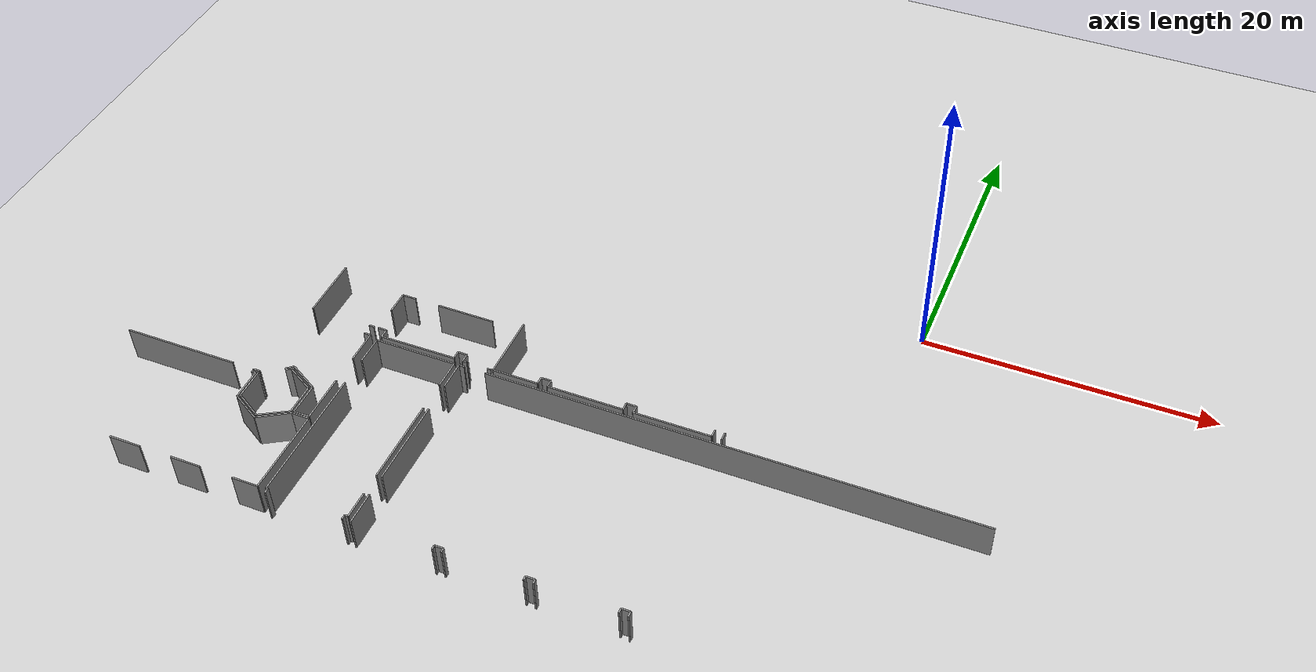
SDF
<sdf version="1.6">
 <world name="default">
  <model name="ground_plane">
   <static>1</static>
   <link name="link">
    <collision name="collision">
     <geometry><plane><normal>0 0 1</normal><size>100 100</size></plane></geometry>
     <surface><friction><ode><mu>100</mu><mu2>50</mu2></ode></friction></surface>
    </collision>
    <visual name="visual">
     <cast_shadows>0</cast_shadows>
     <geometry><plane><normal>0 0 1</normal><size>100 100</size></plane></geometry>
     <material>
      <script><uri>file://media/materials/scripts/gazebo.material</uri><name>Gazebo/Grey</name></script>
     </material>
    </visual>
   </link>
  </model>
  <model name="50010536_PLAN3">
   <static>1</static>
   <link name="Wall_259">
    <collision name="Wall_259_Collision">
     <geometry><box><size>4.30993873599 0.1 2.5</size></box></geometry>
     <pose>2.154969368 0 1.25 0 0 0</pose>
    </collision>
    <visual name="Wall_259_Visual">
     <pose>2.154969368 0 1.25 0 0 0</pose>
     <geometry><box><size>4.30993873599 0.1 2.5</size></box></geometry>
     <material>
      <script><uri>file://media/materials/scripts/gazebo.material</uri><name>Gazebo/Grey</name></script>
      <ambient>1 1 1 1</ambient>
     </material>
    </visual>
    <pose>64.3123512046 -44.3683966606 0 0 0 1.57079632679</pose>
   </link>
   <link name="Wall_283">
    <collision name="Wall_283_Collision">
     <geometry><box><size>0.357045360759 0.1 2.5</size></box></geometry>
     <pose>0.17852268038 0 1.25 0 0 0</pose>
    </collision>
    <visual name="Wall_283_Visual">
     <pose>0.17852268038 0 1.25 0 0 0</pose>
     <geometry><box><size>0.357045360759 0.1 2.5</size></box></geometry>
     <material>
      <script><uri>file://media/materials/scripts/gazebo.material</uri><name>Gazebo/Grey</name></script>
      <ambient>1 1 1 1</ambient>
     </material>
    </visual>
    <pose>68.9468304606 -44.3460495826 0 0 0 3.14159265359</pose>
   </link>
   <link name="Wall_284">
    <collision name="Wall_284_Collision">
     <geometry><box><size>0.0225209879012 0.1 2.5</size></box></geometry>
     <pose>0.0112604939506 0 1.25 0 0 0</pose>
    </collision>
    <visual name="Wall_284_Visual">
     <pose>0.0112604939506 0 1.25 0 0 0</pose>
     <geometry><box><size>0.0225209879012 0.1 2.5</size></box></geometry>
     <material>
      <script><uri>file://media/materials/scripts/gazebo.material</uri><name>Gazebo/Grey</name></script>
      <ambient>1 1 1 1</ambient>
     </material>
    </visual>
    <pose>64.3151445894 -44.3460495826 0 0 0 -1.69515132134</pose>
   </link>
   <link name="Wall_292">
    <collision name="Wall_292_Collision">
     <geometry><box><size>0.326064184363 0.1 2.5</size></box></geometry>
     <pose>0.163032092182 0 1.25 0 0 0</pose>
    </collision>
    <visual name="Wall_292_Visual">
     <pose>0.163032092182 0 1.25 0 0 0</pose>
     <geometry><box><size>0.326064184363 0.1 2.5</size></box></geometry>
     <material>
      <script><uri>file://media/materials/scripts/gazebo.material</uri><name>Gazebo/Grey</name></script>
      <ambient>1 1 1 1</ambient>
     </material>
    </visual>
    <pose>63.6424467511 -50.8482874647 0 0 0 0.0</pose>
   </link>
   <link name="Wall_293">
    <collision name="Wall_293_Collision">
     <geometry><box><size>2.20423451735 0.1 2.5</size></box></geometry>
     <pose>1.10211725867 0 1.25 0 0 0</pose>
    </collision>
    <visual name="Wall_293_Visual">
     <pose>1.10211725867 0 1.25 0 0 0</pose>
     <geometry><box><size>2.20423451735 0.1 2.5</size></box></geometry>
     <material>
      <script><uri>file://media/materials/scripts/gazebo.material</uri><name>Gazebo/Grey</name></script>
      <ambient>1 1 1 1</ambient>
     </material>
    </visual>
    <pose>63.9685109355 -50.8482874647 0 0 0 -1.57079632679</pose>
   </link>
   <link name="Wall_294">
    <collision name="Wall_294_Collision">
     <geometry><box><size>2.32083669156 0.1 2.5</size></box></geometry>
     <pose>1.16041834578 0 1.25 0 0 0</pose>
    </collision>
    <visual name="Wall_294_Visual">
     <pose>1.16041834578 0 1.25 0 0 0</pose>
     <geometry><box><size>2.32083669156 0.1 2.5</size></box></geometry>
     <material>
      <script><uri>file://media/materials/scripts/gazebo.material</uri><name>Gazebo/Grey</name></script>
      <ambient>1 1 1 1</ambient>
     </material>
    </visual>
    <pose>63.9685109355 -53.052521982 0 0 0 -0.522009763757</pose>
   </link>
   <link name="Wall_295">
    <collision name="Wall_295_Collision">
     <geometry><box><size>2.32035682719 0.1 2.5</size></box></geometry>
     <pose>1.1601784136 0 1.25 0 0 0</pose>
    </collision>
    <visual name="Wall_295_Visual">
     <pose>1.1601784136 0 1.25 0 0 0</pose>
     <geometry><box><size>2.32035682719 0.1 2.5</size></box></geometry>
     <material>
      <script><uri>file://media/materials/scripts/gazebo.material</uri><name>Gazebo/Grey</name></script>
      <ambient>1 1 1 1</ambient>
     </material>
    </visual>
    <pose>65.9802558486 -54.2097451036 0 0 0 0.549109710769</pose>
   </link>
   <link name="Wall_296">
    <collision name="Wall_296_Collision">
     <geometry><box><size>1.22172491509 0.1 2.5</size></box></geometry>
     <pose>0.610862457544 0 1.25 0 0 0</pose>
    </collision>
    <visual name="Wall_296_Visual">
     <pose>0.610862457544 0 1.25 0 0 0</pose>
     <geometry><box><size>1.22172491509 0.1 2.5</size></box></geometry>
     <material>
      <script><uri>file://media/materials/scripts/gazebo.material</uri><name>Gazebo/Grey</name></script>
      <ambient>1 1 1 1</ambient>
     </material>
    </visual>
    <pose>67.959495921 -52.9986858394 0 0 0 0.0</pose>
   </link>
   <link name="Wall_297">
    <collision name="Wall_297_Collision">
     <geometry><box><size>5.93111767133 0.1 2.5</size></box></geometry>
     <pose>2.96555883567 0 1.25 0 0 0</pose>
    </collision>
    <visual name="Wall_297_Visual">
     <pose>2.96555883567 0 1.25 0 0 0</pose>
     <geometry><box><size>5.93111767133 0.1 2.5</size></box></geometry>
     <material>
      <script><uri>file://media/materials/scripts/gazebo.material</uri><name>Gazebo/Grey</name></script>
      <ambient>1 1 1 1</ambient>
     </material>
    </visual>
    <pose>69.1812208361 -52.9986858394 0 0 0 -1.57079632679</pose>
   </link>
   <link name="Wall_298">
    <collision name="Wall_298_Collision">
     <geometry><box><size>1.80731993778 0.1 2.5</size></box></geometry>
     <pose>0.903659968892 0 1.25 0 0 0</pose>
    </collision>
    <visual name="Wall_298_Visual">
     <pose>0.903659968892 0 1.25 0 0 0</pose>
     <geometry><box><size>1.80731993778 0.1 2.5</size></box></geometry>
     <material>
      <script><uri>file://media/materials/scripts/gazebo.material</uri><name>Gazebo/Grey</name></script>
      <ambient>1 1 1 1</ambient>
     </material>
    </visual>
    <pose>69.1812208361 -58.9298035108 0 0 0 3.14159265359</pose>
   </link>
   <link name="Wall_299">
    <collision name="Wall_299_Collision">
     <geometry><box><size>2.11890931022 0.1 2.5</size></box></geometry>
     <pose>1.05945465511 0 1.25 0 0 0</pose>
    </collision>
    <visual name="Wall_299_Visual">
     <pose>1.05945465511 0 1.25 0 0 0</pose>
     <geometry><box><size>2.11890931022 0.1 2.5</size></box></geometry>
     <material>
      <script><uri>file://media/materials/scripts/gazebo.material</uri><name>Gazebo/Grey</name></script>
      <ambient>1 1 1 1</ambient>
     </material>
    </visual>
    <pose>65.0721518586 -58.9298035108 0 0 0 3.14159265359</pose>
   </link>
   <link name="Wall_300">
    <collision name="Wall_300_Collision">
     <geometry><box><size>2.19509253087 0.1 2.5</size></box></geometry>
     <pose>1.09754626544 0 1.25 0 0 0</pose>
    </collision>
    <visual name="Wall_300_Visual">
     <pose>1.09754626544 0 1.25 0 0 0</pose>
     <geometry><box><size>2.19509253087 0.1 2.5</size></box></geometry>
     <material>
      <script><uri>file://media/materials/scripts/gazebo.material</uri><name>Gazebo/Grey</name></script>
      <ambient>1 1 1 1</ambient>
     </material>
    </visual>
    <pose>60.7007586579 -58.9298035108 0 0 0 3.14159265359</pose>
   </link>
   <link name="Wall_302">
    <collision name="Wall_302_Collision">
     <geometry><box><size>2.13099431587 0.1 2.5</size></box></geometry>
     <pose>1.06549715794 0 1.25 0 0 0</pose>
    </collision>
    <visual name="Wall_302_Visual">
     <pose>1.06549715794 0 1.25 0 0 0</pose>
     <geometry><box><size>2.13099431587 0.1 2.5</size></box></geometry>
     <material>
      <script><uri>file://media/materials/scripts/gazebo.material</uri><name>Gazebo/Grey</name></script>
      <ambient>1 1 1 1</ambient>
     </material>
    </visual>
    <pose>65.9690823096 -53.9806875536 0 0 0 2.62030331596</pose>
   </link>
   <link name="Wall_303">
    <collision name="Wall_303_Collision">
     <geometry><box><size>2.09988022679 0.1 2.5</size></box></geometry>
     <pose>1.0499401134 0 1.25 0 0 0</pose>
    </collision>
    <visual name="Wall_303_Visual">
     <pose>1.0499401134 0 1.25 0 0 0</pose>
     <geometry><box><size>2.09988022679 0.1 2.5</size></box></geometry>
     <material>
      <script><uri>file://media/materials/scripts/gazebo.material</uri><name>Gazebo/Grey</name></script>
      <ambient>1 1 1 1</ambient>
     </material>
    </visual>
    <pose>64.1211313208 -52.91945529 0 0 0 1.57478711465</pose>
   </link>
   <link name="Wall_304">
    <collision name="Wall_304_Collision">
     <geometry><box><size>0.106845288316 0.1 2.5</size></box></geometry>
     <pose>0.0534226441581 0 1.25 0 0 0</pose>
    </collision>
    <visual name="Wall_304_Visual">
     <pose>0.0534226441581 0 1.25 0 0 0</pose>
     <geometry><box><size>0.106845288316 0.1 2.5</size></box></geometry>
     <material>
      <script><uri>file://media/materials/scripts/gazebo.material</uri><name>Gazebo/Grey</name></script>
      <ambient>1 1 1 1</ambient>
     </material>
    </visual>
    <pose>64.1127511666 -50.8195917849 0 0 0 0.702954768102</pose>
   </link>
   <link name="Wall_305">
    <collision name="Wall_305_Collision">
     <geometry><box><size>0.405480932625 0.1 2.5</size></box></geometry>
     <pose>0.202740466313 0 1.25 0 0 0</pose>
    </collision>
    <visual name="Wall_305_Visual">
     <pose>0.202740466313 0 1.25 0 0 0</pose>
     <geometry><box><size>0.405480932625 0.1 2.5</size></box></geometry>
     <material>
      <script><uri>file://media/materials/scripts/gazebo.material</uri><name>Gazebo/Grey</name></script>
      <ambient>1 1 1 1</ambient>
     </material>
    </visual>
    <pose>65.5912135352 -49.9282481034 0 0 0 0.50034637147</pose>
   </link>
   <link name="Wall_306">
    <collision name="Wall_306_Collision">
     <geometry><box><size>2.13327136933 0.1 2.5</size></box></geometry>
     <pose>1.06663568467 0 1.25 0 0 0</pose>
    </collision>
    <visual name="Wall_306_Visual">
     <pose>1.06663568467 0 1.25 0 0 0</pose>
     <geometry><box><size>2.13327136933 0.1 2.5</size></box></geometry>
     <material>
      <script><uri>file://media/materials/scripts/gazebo.material</uri><name>Gazebo/Grey</name></script>
      <ambient>1 1 1 1</ambient>
     </material>
    </visual>
    <pose>65.9469891756 -49.7337269466 0 0 0 -0.506462585459</pose>
   </link>
   <link name="Wall_307">
    <collision name="Wall_307_Collision">
     <geometry><box><size>2.13393771852 0.1 2.5</size></box></geometry>
     <pose>1.06696885926 0 1.25 0 0 0</pose>
    </collision>
    <visual name="Wall_307_Visual">
     <pose>1.06696885926 0 1.25 0 0 0</pose>
     <geometry><box><size>2.13393771852 0.1 2.5</size></box></geometry>
     <material>
      <script><uri>file://media/materials/scripts/gazebo.material</uri><name>Gazebo/Grey</name></script>
      <ambient>1 1 1 1</ambient>
     </material>
    </visual>
    <pose>67.8124623052 -50.7685490271 0 0 0 -1.56425113881</pose>
   </link>
   <link name="Wall_308">
    <collision name="Wall_308_Collision">
     <geometry><box><size>2.14763896605 0.1 2.5</size></box></geometry>
     <pose>1.07381948302 0 1.25 0 0 0</pose>
    </collision>
    <visual name="Wall_308_Visual">
     <pose>1.07381948302 0 1.25 0 0 0</pose>
     <geometry><box><size>2.14763896605 0.1 2.5</size></box></geometry>
     <material>
      <script><uri>file://media/materials/scripts/gazebo.material</uri><name>Gazebo/Grey</name></script>
      <ambient>1 1 1 1</ambient>
     </material>
    </visual>
    <pose>67.826429229 -52.9024410374 0 0 0 -2.61561199732</pose>
   </link>
   <link name="Wall_312">
    <collision name="Wall_312_Collision">
     <geometry><box><size>0.502047424055 0.1 2.5</size></box></geometry>
     <pose>0.251023712027 0 1.25 0 0 0</pose>
    </collision>
    <visual name="Wall_312_Visual">
     <pose>0.251023712027 0 1.25 0 0 0</pose>
     <geometry><box><size>0.502047424055 0.1 2.5</size></box></geometry>
     <material>
      <script><uri>file://media/materials/scripts/gazebo.material</uri><name>Gazebo/Grey</name></script>
      <ambient>1 1 1 1</ambient>
     </material>
    </visual>
    <pose>68.6197505 -45.1030568517 0 0 0 0.0</pose>
   </link>
   <link name="Wall_313">
    <collision name="Wall_313_Collision">
     <geometry><box><size>2.30733580929 0.1 2.5</size></box></geometry>
     <pose>1.15366790464 0 1.25 0 0 0</pose>
    </collision>
    <visual name="Wall_313_Visual">
     <pose>1.15366790464 0 1.25 0 0 0</pose>
     <geometry><box><size>2.30733580929 0.1 2.5</size></box></geometry>
     <material>
      <script><uri>file://media/materials/scripts/gazebo.material</uri><name>Gazebo/Grey</name></script>
      <ambient>1 1 1 1</ambient>
     </material>
    </visual>
    <pose>69.121797924 -45.1030568517 0 0 0 -1.57079632679</pose>
   </link>
   <link name="Wall_314">
    <collision name="Wall_314_Collision">
     <geometry><box><size>3.34520521855 0.1 2.5</size></box></geometry>
     <pose>1.67260260928 0 1.25 0 0 0</pose>
    </collision>
    <visual name="Wall_314_Visual">
     <pose>1.67260260928 0 1.25 0 0 0</pose>
     <geometry><box><size>3.34520521855 0.1 2.5</size></box></geometry>
     <material>
      <script><uri>file://media/materials/scripts/gazebo.material</uri><name>Gazebo/Grey</name></script>
      <ambient>1 1 1 1</ambient>
     </material>
    </visual>
    <pose>69.121797924 -49.5193981526 0 0 0 -1.57079632679</pose>
   </link>
   <link name="Wall_315">
    <collision name="Wall_315_Collision">
     <geometry><box><size>1.09983176205 0.1 2.5</size></box></geometry>
     <pose>0.549915881027 0 1.25 0 0 0</pose>
    </collision>
    <visual name="Wall_315_Visual">
     <pose>0.549915881027 0 1.25 0 0 0</pose>
     <geometry><box><size>1.09983176205 0.1 2.5</size></box></geometry>
     <material>
      <script><uri>file://media/materials/scripts/gazebo.material</uri><name>Gazebo/Grey</name></script>
      <ambient>1 1 1 1</ambient>
     </material>
    </visual>
    <pose>69.121797924 -52.8646033711 0 0 0 3.14159265359</pose>
   </link>
   <link name="Wall_316">
    <collision name="Wall_316_Collision">
     <geometry><box><size>2.24791289718 0.1 2.5</size></box></geometry>
     <pose>1.12395644859 0 1.25 0 0 0</pose>
    </collision>
    <visual name="Wall_316_Visual">
     <pose>1.12395644859 0 1.25 0 0 0</pose>
     <geometry><box><size>2.24791289718 0.1 2.5</size></box></geometry>
     <material>
      <script><uri>file://media/materials/scripts/gazebo.material</uri><name>Gazebo/Grey</name></script>
      <ambient>1 1 1 1</ambient>
     </material>
    </visual>
    <pose>68.021966162 -52.8646033711 0 0 0 1.57079632679</pose>
   </link>
   <link name="Wall_317">
    <collision name="Wall_317_Collision">
     <geometry><box><size>2.36116382664 0.1 2.5</size></box></geometry>
     <pose>1.18058191332 0 1.25 0 0 0</pose>
    </collision>
    <visual name="Wall_317_Visual">
     <pose>1.18058191332 0 1.25 0 0 0</pose>
     <geometry><box><size>2.36116382664 0.1 2.5</size></box></geometry>
     <material>
      <script><uri>file://media/materials/scripts/gazebo.material</uri><name>Gazebo/Grey</name></script>
      <ambient>1 1 1 1</ambient>
     </material>
    </visual>
    <pose>68.021966162 -50.6166904739 0 0 0 2.62900985807</pose>
   </link>
   <link name="Wall_318">
    <collision name="Wall_318_Collision">
     <geometry><box><size>0.592712256715 0.1 2.5</size></box></geometry>
     <pose>0.296356128357 0 1.25 0 0 0</pose>
    </collision>
    <visual name="Wall_318_Visual">
     <pose>0.296356128357 0 1.25 0 0 0</pose>
     <geometry><box><size>0.592712256715 0.1 2.5</size></box></geometry>
     <material>
      <script><uri>file://media/materials/scripts/gazebo.material</uri><name>Gazebo/Grey</name></script>
      <ambient>1 1 1 1</ambient>
     </material>
    </visual>
    <pose>65.9642573723 -49.4587055201 0 0 0 -2.44082010975</pose>
   </link>
   <link name="Wall_319">
    <collision name="Wall_319_Collision">
     <geometry><box><size>0.526933942799 0.1 2.5</size></box></geometry>
     <pose>0.2634669714 0 1.25 0 0 0</pose>
    </collision>
    <visual name="Wall_319_Visual">
     <pose>0.2634669714 0 1.25 0 0 0</pose>
     <geometry><box><size>0.526933942799 0.1 2.5</size></box></geometry>
     <material>
      <script><uri>file://media/materials/scripts/gazebo.material</uri><name>Gazebo/Grey</name></script>
      <ambient>1 1 1 1</ambient>
     </material>
    </visual>
    <pose>64.1576992667 -50.6497032029 0 0 0 3.14159265359</pose>
   </link>
   <link name="Wall_320">
    <collision name="Wall_320_Collision">
     <geometry><box><size>7.99392454604 0.1 2.5</size></box></geometry>
     <pose>3.99696227302 0 1.25 0 0 0</pose>
    </collision>
    <visual name="Wall_320_Visual">
     <pose>3.99696227302 0 1.25 0 0 0</pose>
     <geometry><box><size>7.99392454604 0.1 2.5</size></box></geometry>
     <material>
      <script><uri>file://media/materials/scripts/gazebo.material</uri><name>Gazebo/Grey</name></script>
      <ambient>1 1 1 1</ambient>
     </material>
    </visual>
    <pose>62.1119258483 -50.6497032029 0 0 0 -3.13940071962</pose>
   </link>
   <link name="Wall_321">
    <collision name="Wall_321_Collision">
     <geometry><box><size>9.38069390217 0.1 2.5</size></box></geometry>
     <pose>4.69034695108 0 1.25 0 0 0</pose>
    </collision>
    <visual name="Wall_321_Visual">
     <pose>4.69034695108 0 1.25 0 0 0</pose>
     <geometry><box><size>9.38069390217 0.1 2.5</size></box></geometry>
     <material>
      <script><uri>file://media/materials/scripts/gazebo.material</uri><name>Gazebo/Grey</name></script>
      <ambient>1 1 1 1</ambient>
     </material>
    </visual>
    <pose>69.7373583468 -58.8533663461 0 0 0 1.57079632679</pose>
   </link>
   <link name="Wall_322">
    <collision name="Wall_322_Collision">
     <geometry><box><size>2.00869758436 0.1 2.5</size></box></geometry>
     <pose>1.00434879218 0 1.25 0 0 0</pose>
    </collision>
    <visual name="Wall_322_Visual">
     <pose>1.00434879218 0 1.25 0 0 0</pose>
     <geometry><box><size>2.00869758436 0.1 2.5</size></box></geometry>
     <material>
      <script><uri>file://media/materials/scripts/gazebo.material</uri><name>Gazebo/Grey</name></script>
      <ambient>1 1 1 1</ambient>
     </material>
    </visual>
    <pose>69.7373583468 -47.3626511761 0 0 0 1.57079632679</pose>
   </link>
   <link name="Wall_323">
    <collision name="Wall_323_Collision">
     <geometry><box><size>5.70790083484 0.1 2.5</size></box></geometry>
     <pose>2.85395041742 0 1.25 0 0 0</pose>
    </collision>
    <visual name="Wall_323_Visual">
     <pose>2.85395041742 0 1.25 0 0 0</pose>
     <geometry><box><size>5.70790083484 0.1 2.5</size></box></geometry>
     <material>
      <script><uri>file://media/materials/scripts/gazebo.material</uri><name>Gazebo/Grey</name></script>
      <ambient>1 1 1 1</ambient>
     </material>
    </visual>
    <pose>69.7373583468 -45.3539535917 0 0 0 0.0</pose>
   </link>
   <link name="Wall_324">
    <collision name="Wall_324_Collision">
     <geometry><box><size>2.04450369806 0.1 2.5</size></box></geometry>
     <pose>1.02225184903 0 1.25 0 0 0</pose>
    </collision>
    <visual name="Wall_324_Visual">
     <pose>1.02225184903 0 1.25 0 0 0</pose>
     <geometry><box><size>2.04450369806 0.1 2.5</size></box></geometry>
     <material>
      <script><uri>file://media/materials/scripts/gazebo.material</uri><name>Gazebo/Grey</name></script>
      <ambient>1 1 1 1</ambient>
     </material>
    </visual>
    <pose>75.4452591817 -45.3539535917 0 0 0 -1.57079632679</pose>
   </link>
   <link name="Wall_325">
    <collision name="Wall_325_Collision">
     <geometry><box><size>5.96920928166 0.1 2.5</size></box></geometry>
     <pose>2.98460464083 0 1.25 0 0 0</pose>
    </collision>
    <visual name="Wall_325_Visual">
     <pose>2.98460464083 0 1.25 0 0 0</pose>
     <geometry><box><size>5.96920928166 0.1 2.5</size></box></geometry>
     <material>
      <script><uri>file://media/materials/scripts/gazebo.material</uri><name>Gazebo/Grey</name></script>
      <ambient>1 1 1 1</ambient>
     </material>
    </visual>
    <pose>75.4452591817 -49.535904517 0 0 0 -1.57079632679</pose>
   </link>
   <link name="Wall_326">
    <collision name="Wall_326_Collision">
     <geometry><box><size>1.8837571025 0.1 2.5</size></box></geometry>
     <pose>0.941878551249 0 1.25 0 0 0</pose>
    </collision>
    <visual name="Wall_326_Visual">
     <pose>0.941878551249 0 1.25 0 0 0</pose>
     <geometry><box><size>1.8837571025 0.1 2.5</size></box></geometry>
     <material>
      <script><uri>file://media/materials/scripts/gazebo.material</uri><name>Gazebo/Grey</name></script>
      <ambient>1 1 1 1</ambient>
     </material>
    </visual>
    <pose>75.4452591817 -57.0125257912 0 0 0 -1.57079632679</pose>
   </link>
   <link name="Wall_327">
    <collision name="Wall_327_Collision">
     <geometry><box><size>0.229057550075 0.1 2.5</size></box></geometry>
     <pose>0.114528775037 0 1.25 0 0 0</pose>
    </collision>
    <visual name="Wall_327_Visual">
     <pose>0.114528775037 0 1.25 0 0 0</pose>
     <geometry><box><size>0.229057550075 0.1 2.5</size></box></geometry>
     <material>
      <script><uri>file://media/materials/scripts/gazebo.material</uri><name>Gazebo/Grey</name></script>
      <ambient>1 1 1 1</ambient>
     </material>
    </visual>
    <pose>75.4452591817 -58.8962828937 0 0 0 3.14159265359</pose>
   </link>
   <link name="Wall_328">
    <collision name="Wall_328_Collision">
     <geometry><box><size>0.316414309748 0.1 2.5</size></box></geometry>
     <pose>0.158207154874 0 1.25 0 0 0</pose>
    </collision>
    <visual name="Wall_328_Visual">
     <pose>0.158207154874 0 1.25 0 0 0</pose>
     <geometry><box><size>0.316414309748 0.1 2.5</size></box></geometry>
     <material>
      <script><uri>file://media/materials/scripts/gazebo.material</uri><name>Gazebo/Grey</name></script>
      <ambient>1 1 1 1</ambient>
     </material>
    </visual>
    <pose>75.2162016316 -58.8962828937 0 0 0 -1.57079632679</pose>
   </link>
   <link name="Wall_329">
    <collision name="Wall_329_Collision">
     <geometry><box><size>0.35475986414 0.1 2.5</size></box></geometry>
     <pose>0.17737993207 0 1.25 0 0 0</pose>
    </collision>
    <visual name="Wall_329_Visual">
     <pose>0.17737993207 0 1.25 0 0 0</pose>
     <geometry><box><size>0.35475986414 0.1 2.5</size></box></geometry>
     <material>
      <script><uri>file://media/materials/scripts/gazebo.material</uri><name>Gazebo/Grey</name></script>
      <ambient>1 1 1 1</ambient>
     </material>
    </visual>
    <pose>69.8724565914 -59.2126972034 0 0 0 1.57079632679</pose>
   </link>
   <link name="Wall_330">
    <collision name="Wall_330_Collision">
     <geometry><box><size>0.135175551326 0.1 2.5</size></box></geometry>
     <pose>0.0675877756631 0 1.25 0 0 0</pose>
    </collision>
    <visual name="Wall_330_Visual">
     <pose>0.0675877756631 0 1.25 0 0 0</pose>
     <geometry><box><size>0.135175551326 0.1 2.5</size></box></geometry>
     <material>
      <script><uri>file://media/materials/scripts/gazebo.material</uri><name>Gazebo/Grey</name></script>
      <ambient>1 1 1 1</ambient>
     </material>
    </visual>
    <pose>69.8724565914 -58.8579373393 0 0 0 3.10777096931</pose>
   </link>
   <link name="Wall_331">
    <collision name="Wall_331_Collision">
     <geometry><box><size>2.27102180745 0.1 2.5</size></box></geometry>
     <pose>1.13551090372 0 1.25 0 0 0</pose>
    </collision>
    <visual name="Wall_331_Visual">
     <pose>1.13551090372 0 1.25 0 0 0</pose>
     <geometry><box><size>2.27102180745 0.1 2.5</size></box></geometry>
     <material>
      <script><uri>file://media/materials/scripts/gazebo.material</uri><name>Gazebo/Grey</name></script>
      <ambient>1 1 1 1</ambient>
     </material>
    </visual>
    <pose>75.7890994508 -59.2226010221 0 0 0 1.57079632679</pose>
   </link>
   <link name="Wall_332">
    <collision name="Wall_332_Collision">
     <geometry><box><size>5.99460368854 0.1 2.5</size></box></geometry>
     <pose>2.99730184427 0 1.25 0 0 0</pose>
    </collision>
    <visual name="Wall_332_Visual">
     <pose>2.99730184427 0 1.25 0 0 0</pose>
     <geometry><box><size>5.99460368854 0.1 2.5</size></box></geometry>
     <material>
      <script><uri>file://media/materials/scripts/gazebo.material</uri><name>Gazebo/Grey</name></script>
      <ambient>1 1 1 1</ambient>
     </material>
    </visual>
    <pose>75.7890994508 -55.4708313494 0 0 0 1.57079632679</pose>
   </link>
   <link name="Wall_333">
    <collision name="Wall_333_Collision">
     <geometry><box><size>2.02469606069 0.1 2.5</size></box></geometry>
     <pose>1.01234803035 0 1.25 0 0 0</pose>
    </collision>
    <visual name="Wall_333_Visual">
     <pose>1.01234803035 0 1.25 0 0 0</pose>
     <geometry><box><size>2.02469606069 0.1 2.5</size></box></geometry>
     <material>
      <script><uri>file://media/materials/scripts/gazebo.material</uri><name>Gazebo/Grey</name></script>
      <ambient>1 1 1 1</ambient>
     </material>
    </visual>
    <pose>75.7890994508 -47.3842364219 0 0 0 1.57079632679</pose>
   </link>
   <link name="Wall_334">
    <collision name="Wall_334_Collision">
     <geometry><box><size>0.376852998127 0.1 2.5</size></box></geometry>
     <pose>0.188426499064 0 1.25 0 0 0</pose>
    </collision>
    <visual name="Wall_334_Visual">
     <pose>0.188426499064 0 1.25 0 0 0</pose>
     <geometry><box><size>0.376852998127 0.1 2.5</size></box></geometry>
     <material>
      <script><uri>file://media/materials/scripts/gazebo.material</uri><name>Gazebo/Grey</name></script>
      <ambient>1 1 1 1</ambient>
     </material>
    </visual>
    <pose>75.7890994508 -45.3595403612 0 0 0 0.0</pose>
   </link>
   <link name="Wall_335">
    <collision name="Wall_335_Collision">
     <geometry><box><size>33.8096054344 0.1 2.5</size></box></geometry>
     <pose>16.9048027172 0 1.25 0 0 0</pose>
    </collision>
    <visual name="Wall_335_Visual">
     <pose>16.9048027172 0 1.25 0 0 0</pose>
     <geometry><box><size>33.8096054344 0.1 2.5</size></box></geometry>
     <material>
      <script><uri>file://media/materials/scripts/gazebo.material</uri><name>Gazebo/Grey</name></script>
      <ambient>1 1 1 1</ambient>
     </material>
    </visual>
    <pose>77.6660000635 -45.3595403612 0 0 0 0.0</pose>
   </link>
   <link name="Wall_346">
    <collision name="Wall_346_Collision">
     <geometry><box><size>0.367203123512 0.1 2.5</size></box></geometry>
     <pose>0.183601561756 0 1.25 0 0 0</pose>
    </collision>
    <visual name="Wall_346_Visual">
     <pose>0.183601561756 0 1.25 0 0 0</pose>
     <geometry><box><size>0.367203123512 0.1 2.5</size></box></geometry>
     <material>
      <script><uri>file://media/materials/scripts/gazebo.material</uri><name>Gazebo/Grey</name></script>
      <ambient>1 1 1 1</ambient>
     </material>
    </visual>
    <pose>93.8336031489 -59.2596768562 0 0 0 1.57079632679</pose>
   </link>
   <link name="Wall_347">
    <collision name="Wall_347_Collision">
     <geometry><box><size>0.606672380408 0.1 2.5</size></box></geometry>
     <pose>0.303336190204 0 1.25 0 0 0</pose>
    </collision>
    <visual name="Wall_347_Visual">
     <pose>0.303336190204 0 1.25 0 0 0</pose>
     <geometry><box><size>0.606672380408 0.1 2.5</size></box></geometry>
     <material>
      <script><uri>file://media/materials/scripts/gazebo.material</uri><name>Gazebo/Grey</name></script>
      <ambient>1 1 1 1</ambient>
     </material>
    </visual>
    <pose>93.8336031489 -58.8924737327 0 0 0 3.14159265359</pose>
   </link>
   <link name="Wall_348">
    <collision name="Wall_348_Collision">
     <geometry><box><size>0.317684030092 0.1 2.5</size></box></geometry>
     <pose>0.158842015046 0 1.25 0 0 0</pose>
    </collision>
    <visual name="Wall_348_Visual">
     <pose>0.158842015046 0 1.25 0 0 0</pose>
     <geometry><box><size>0.317684030092 0.1 2.5</size></box></geometry>
     <material>
      <script><uri>file://media/materials/scripts/gazebo.material</uri><name>Gazebo/Grey</name></script>
      <ambient>1 1 1 1</ambient>
     </material>
    </visual>
    <pose>93.2269307685 -58.8924737327 0 0 0 -1.57079632679</pose>
   </link>
   <link name="Wall_349">
    <collision name="Wall_349_Collision">
     <geometry><box><size>0.313113036854 0.1 2.5</size></box></geometry>
     <pose>0.156556518427 0 1.25 0 0 0</pose>
    </collision>
    <visual name="Wall_349_Visual">
     <pose>0.156556518427 0 1.25 0 0 0</pose>
     <geometry><box><size>0.313113036854 0.1 2.5</size></box></geometry>
     <material>
      <script><uri>file://media/materials/scripts/gazebo.material</uri><name>Gazebo/Grey</name></script>
      <ambient>1 1 1 1</ambient>
     </material>
    </visual>
    <pose>87.823000984 -59.2101577628 0 0 0 1.57079632679</pose>
   </link>
   <link name="Wall_350">
    <collision name="Wall_350_Collision">
     <geometry><box><size>0.627241849983 0.1 2.5</size></box></geometry>
     <pose>0.313620924991 0 1.25 0 0 0</pose>
    </collision>
    <visual name="Wall_350_Visual">
     <pose>0.313620924991 0 1.25 0 0 0</pose>
     <geometry><box><size>0.627241849983 0.1 2.5</size></box></geometry>
     <material>
      <script><uri>file://media/materials/scripts/gazebo.material</uri><name>Gazebo/Grey</name></script>
      <ambient>1 1 1 1</ambient>
     </material>
    </visual>
    <pose>87.823000984 -58.8970447259 0 0 0 3.14159265359</pose>
   </link>
   <link name="Wall_351">
    <collision name="Wall_351_Collision">
     <geometry><box><size>0.290004126591 0.1 2.5</size></box></geometry>
     <pose>0.145002063296 0 1.25 0 0 0</pose>
    </collision>
    <visual name="Wall_351_Visual">
     <pose>0.145002063296 0 1.25 0 0 0</pose>
     <geometry><box><size>0.290004126591 0.1 2.5</size></box></geometry>
     <material>
      <script><uri>file://media/materials/scripts/gazebo.material</uri><name>Gazebo/Grey</name></script>
      <ambient>1 1 1 1</ambient>
     </material>
    </visual>
    <pose>87.1957591341 -58.8970447259 0 0 0 -1.57079632679</pose>
   </link>
   <link name="Wall_352">
    <collision name="Wall_352_Collision">
     <geometry><box><size>0.29660667238 0.1 2.5</size></box></geometry>
     <pose>0.14830333619 0 1.25 0 0 0</pose>
    </collision>
    <visual name="Wall_352_Visual">
     <pose>0.14830333619 0 1.25 0 0 0</pose>
     <geometry><box><size>0.29660667238 0.1 2.5</size></box></geometry>
     <material>
      <script><uri>file://media/materials/scripts/gazebo.material</uri><name>Gazebo/Grey</name></script>
      <ambient>1 1 1 1</ambient>
     </material>
    </visual>
    <pose>81.8466812685 -59.1870488525 0 0 0 1.57079632679</pose>
   </link>
   <link name="Wall_353">
    <collision name="Wall_353_Collision">
     <geometry><box><size>0.607434212615 0.1 2.5</size></box></geometry>
     <pose>0.303717106307 0 1.25 0 0 0</pose>
    </collision>
    <visual name="Wall_353_Visual">
     <pose>0.303717106307 0 1.25 0 0 0</pose>
     <geometry><box><size>0.607434212615 0.1 2.5</size></box></geometry>
     <material>
      <script><uri>file://media/materials/scripts/gazebo.material</uri><name>Gazebo/Grey</name></script>
      <ambient>1 1 1 1</ambient>
     </material>
    </visual>
    <pose>81.8466812685 -58.8904421801 0 0 0 3.14159265359</pose>
   </link>
   <link name="Wall_354">
    <collision name="Wall_354_Collision">
     <geometry><box><size>0.289242294385 0.1 2.5</size></box></geometry>
     <pose>0.144621147192 0 1.25 0 0 0</pose>
    </collision>
    <visual name="Wall_354_Visual">
     <pose>0.144621147192 0 1.25 0 0 0</pose>
     <geometry><box><size>0.289242294385 0.1 2.5</size></box></geometry>
     <material>
      <script><uri>file://media/materials/scripts/gazebo.material</uri><name>Gazebo/Grey</name></script>
      <ambient>1 1 1 1</ambient>
     </material>
    </visual>
    <pose>81.2392470558 -58.8904421801 0 0 0 -1.57079632679</pose>
   </link>
   <link name="Wall_355">
    <collision name="Wall_355_Collision">
     <geometry><box><size>0.626733961845 0.1 2.5</size></box></geometry>
     <pose>0.313366980922 0 1.25 0 0 0</pose>
    </collision>
    <visual name="Wall_355_Visual">
     <pose>0.313366980922 0 1.25 0 0 0</pose>
     <geometry><box><size>0.626733961845 0.1 2.5</size></box></geometry>
     <material>
      <script><uri>file://media/materials/scripts/gazebo.material</uri><name>Gazebo/Grey</name></script>
      <ambient>1 1 1 1</ambient>
     </material>
    </visual>
    <pose>69.8676316541 -44.9542456274 0 0 0 1.57079632679</pose>
   </link>
   <link name="Wall_356">
    <collision name="Wall_356_Collision">
     <geometry><box><size>0.608196044821 0.1 2.5</size></box></geometry>
     <pose>0.304098022411 0 1.25 0 0 0</pose>
    </collision>
    <visual name="Wall_356_Visual">
     <pose>0.304098022411 0 1.25 0 0 0</pose>
     <geometry><box><size>0.608196044821 0.1 2.5</size></box></geometry>
     <material>
      <script><uri>file://media/materials/scripts/gazebo.material</uri><name>Gazebo/Grey</name></script>
      <ambient>1 1 1 1</ambient>
     </material>
    </visual>
    <pose>69.8676316541 -44.3275116656 0 0 0 3.14159265359</pose>
   </link>
   <link name="Wall_357">
    <collision name="Wall_357_Collision">
     <geometry><box><size>1.60238707425 0.1 2.5</size></box></geometry>
     <pose>0.801193537123 0 1.25 0 0 0</pose>
    </collision>
    <visual name="Wall_357_Visual">
     <pose>0.801193537123 0 1.25 0 0 0</pose>
     <geometry><box><size>1.60238707425 0.1 2.5</size></box></geometry>
     <material>
      <script><uri>file://media/materials/scripts/gazebo.material</uri><name>Gazebo/Grey</name></script>
      <ambient>1 1 1 1</ambient>
     </material>
    </visual>
    <pose>69.2594356093 -42.5750436466 0 0 0 1.57079632679</pose>
   </link>
   <link name="Wall_358">
    <collision name="Wall_358_Collision">
     <geometry><box><size>0.975907056471 0.1 2.5</size></box></geometry>
     <pose>0.487953528235 0 1.25 0 0 0</pose>
    </collision>
    <visual name="Wall_358_Visual">
     <pose>0.487953528235 0 1.25 0 0 0</pose>
     <geometry><box><size>0.975907056471 0.1 2.5</size></box></geometry>
     <material>
      <script><uri>file://media/materials/scripts/gazebo.material</uri><name>Gazebo/Grey</name></script>
      <ambient>1 1 1 1</ambient>
     </material>
    </visual>
    <pose>69.2594356093 -40.9726565724 0 0 0 0.0</pose>
   </link>
   <link name="Wall_359">
    <collision name="Wall_359_Collision">
     <geometry><box><size>4.06742215027 0.1 2.5</size></box></geometry>
     <pose>2.03371107514 0 1.25 0 0 0</pose>
    </collision>
    <visual name="Wall_359_Visual">
     <pose>2.03371107514 0 1.25 0 0 0</pose>
     <geometry><box><size>4.06742215027 0.1 2.5</size></box></geometry>
     <material>
      <script><uri>file://media/materials/scripts/gazebo.material</uri><name>Gazebo/Grey</name></script>
      <ambient>1 1 1 1</ambient>
     </material>
    </visual>
    <pose>71.9403231438 -40.9726565724 0 0 0 0.0</pose>
   </link>
   <link name="Wall_361">
    <collision name="Wall_361_Collision">
     <geometry><box><size>0.296098784243 0.1 2.5</size></box></geometry>
     <pose>0.148049392121 0 1.25 0 0 0</pose>
    </collision>
    <visual name="Wall_361_Visual">
     <pose>0.148049392121 0 1.25 0 0 0</pose>
     <geometry><box><size>0.296098784243 0.1 2.5</size></box></geometry>
     <material>
      <script><uri>file://media/materials/scripts/gazebo.material</uri><name>Gazebo/Grey</name></script>
      <ambient>1 1 1 1</ambient>
     </material>
    </visual>
    <pose>77.9016601593 -44.9501825223 0 0 0 3.14159265359</pose>
   </link>
   <link name="Wall_362">
    <collision name="Wall_362_Collision">
     <geometry><box><size>0.31387486906 0.1 2.5</size></box></geometry>
     <pose>0.15693743453 0 1.25 0 0 0</pose>
    </collision>
    <visual name="Wall_362_Visual">
     <pose>0.15693743453 0 1.25 0 0 0</pose>
     <geometry><box><size>0.31387486906 0.1 2.5</size></box></geometry>
     <material>
      <script><uri>file://media/materials/scripts/gazebo.material</uri><name>Gazebo/Grey</name></script>
      <ambient>1 1 1 1</ambient>
     </material>
    </visual>
    <pose>76.1458908675 -44.9501825223 0 0 0 3.14159265359</pose>
   </link>
   <link name="Wall_363">
    <collision name="Wall_363_Collision">
     <geometry><box><size>0.615052534679 0.1 2.5</size></box></geometry>
     <pose>0.30752626734 0 1.25 0 0 0</pose>
    </collision>
    <visual name="Wall_363_Visual">
     <pose>0.30752626734 0 1.25 0 0 0</pose>
     <geometry><box><size>0.615052534679 0.1 2.5</size></box></geometry>
     <material>
      <script><uri>file://media/materials/scripts/gazebo.material</uri><name>Gazebo/Grey</name></script>
      <ambient>1 1 1 1</ambient>
     </material>
    </visual>
    <pose>75.8320159985 -44.9501825223 0 0 0 1.57079632679</pose>
   </link>
   <link name="Wall_364">
    <collision name="Wall_364_Collision">
     <geometry><box><size>0.640192997492 0.1 2.5</size></box></geometry>
     <pose>0.320096498746 0 1.25 0 0 0</pose>
    </collision>
    <visual name="Wall_364_Visual">
     <pose>0.320096498746 0 1.25 0 0 0</pose>
     <geometry><box><size>0.640192997492 0.1 2.5</size></box></geometry>
     <material>
      <script><uri>file://media/materials/scripts/gazebo.material</uri><name>Gazebo/Grey</name></script>
      <ambient>1 1 1 1</ambient>
     </material>
    </visual>
    <pose>75.8320159985 -44.3351299876 0 0 0 3.14159265359</pose>
   </link>
   <link name="Wall_365">
    <collision name="Wall_365_Collision">
     <geometry><box><size>0.577468812494 0.1 2.5</size></box></geometry>
     <pose>0.288734406247 0 1.25 0 0 0</pose>
    </collision>
    <visual name="Wall_365_Visual">
     <pose>0.288734406247 0 1.25 0 0 0</pose>
     <geometry><box><size>0.577468812494 0.1 2.5</size></box></geometry>
     <material>
      <script><uri>file://media/materials/scripts/gazebo.material</uri><name>Gazebo/Grey</name></script>
      <ambient>1 1 1 1</ambient>
     </material>
    </visual>
    <pose>75.191823001 -44.3351299876 0 0 0 -1.57079632679</pose>
   </link>
   <link name="Wall_366">
    <collision name="Wall_366_Collision">
     <geometry><box><size>5.32435422903 0.1 2.5</size></box></geometry>
     <pose>2.66217711451 0 1.25 0 0 0</pose>
    </collision>
    <visual name="Wall_366_Visual">
     <pose>2.66217711451 0 1.25 0 0 0</pose>
     <geometry><box><size>5.32435422903 0.1 2.5</size></box></geometry>
     <material>
      <script><uri>file://media/materials/scripts/gazebo.material</uri><name>Gazebo/Grey</name></script>
      <ambient>1 1 1 1</ambient>
     </material>
    </visual>
    <pose>75.191823001 -44.9125988001 0 0 0 -3.13377062482</pose>
   </link>
   <link name="Wall_668">
    <collision name="Wall_668_Collision">
     <geometry><box><size>0.574167539599 0.1 2.5</size></box></geometry>
     <pose>0.2870837698 0 1.25 0 0 0</pose>
    </collision>
    <visual name="Wall_668_Visual">
     <pose>0.2870837698 0 1.25 0 0 0</pose>
     <geometry><box><size>0.574167539599 0.1 2.5</size></box></geometry>
     <material>
      <script><uri>file://media/materials/scripts/gazebo.material</uri><name>Gazebo/Grey</name></script>
      <ambient>1 1 1 1</ambient>
     </material>
    </visual>
    <pose>93.8749960321 -44.9113290798 0 0 0 1.57079632679</pose>
   </link>
   <link name="Wall_670">
    <collision name="Wall_670_Collision">
     <geometry><box><size>0.574167539599 0.1 2.5</size></box></geometry>
     <pose>0.2870837698 0 1.25 0 0 0</pose>
    </collision>
    <visual name="Wall_670_Visual">
     <pose>0.2870837698 0 1.25 0 0 0</pose>
     <geometry><box><size>0.574167539599 0.1 2.5</size></box></geometry>
     <material>
      <script><uri>file://media/materials/scripts/gazebo.material</uri><name>Gazebo/Grey</name></script>
      <ambient>1 1 1 1</ambient>
     </material>
    </visual>
    <pose>93.210424404 -44.3371615402 0 0 0 -1.57079632679</pose>
   </link>
   <link name="Wall_671">
    <collision name="Wall_671_Collision">
     <geometry><box><size>5.3328254452 0.1 2.5</size></box></geometry>
     <pose>2.6664127226 0 1.25 0 0 0</pose>
    </collision>
    <visual name="Wall_671_Visual">
     <pose>2.6664127226 0 1.25 0 0 0</pose>
     <geometry><box><size>5.3328254452 0.1 2.5</size></box></geometry>
     <material>
      <script><uri>file://media/materials/scripts/gazebo.material</uri><name>Gazebo/Grey</name></script>
      <ambient>1 1 1 1</ambient>
     </material>
    </visual>
    <pose>93.210424404 -44.9113290798 0 0 0 3.14159265359</pose>
   </link>
   <link name="Wall_672">
    <collision name="Wall_672_Collision">
     <geometry><box><size>0.549788908993 0.1 2.5</size></box></geometry>
     <pose>0.274894454496 0 1.25 0 0 0</pose>
    </collision>
    <visual name="Wall_672_Visual">
     <pose>0.274894454496 0 1.25 0 0 0</pose>
     <geometry><box><size>0.549788908993 0.1 2.5</size></box></geometry>
     <material>
      <script><uri>file://media/materials/scripts/gazebo.material</uri><name>Gazebo/Grey</name></script>
      <ambient>1 1 1 1</ambient>
     </material>
    </visual>
    <pose>87.8775989588 -44.9113290798 0 0 0 1.57079632679</pose>
   </link>
   <link name="Wall_673">
    <collision name="Wall_673_Collision">
     <geometry><box><size>0.699869853665 0.1 2.5</size></box></geometry>
     <pose>0.349934926832 0 1.25 0 0 0</pose>
    </collision>
    <visual name="Wall_673_Visual">
     <pose>0.349934926832 0 1.25 0 0 0</pose>
     <geometry><box><size>0.699869853665 0.1 2.5</size></box></geometry>
     <material>
      <script><uri>file://media/materials/scripts/gazebo.material</uri><name>Gazebo/Grey</name></script>
      <ambient>1 1 1 1</ambient>
     </material>
    </visual>
    <pose>87.8775989588 -44.3615401708 0 0 0 3.14159265359</pose>
   </link>
   <link name="Wall_674">
    <collision name="Wall_674_Collision">
     <geometry><box><size>0.55258229375 0.1 2.5</size></box></geometry>
     <pose>0.276291146875 0 1.25 0 0 0</pose>
    </collision>
    <visual name="Wall_674_Visual">
     <pose>0.276291146875 0 1.25 0 0 0</pose>
     <geometry><box><size>0.55258229375 0.1 2.5</size></box></geometry>
     <material>
      <script><uri>file://media/materials/scripts/gazebo.material</uri><name>Gazebo/Grey</name></script>
      <ambient>1 1 1 1</ambient>
     </material>
    </visual>
    <pose>87.1777291052 -44.3615401708 0 0 0 -1.57079632679</pose>
   </link>
   <link name="Wall_675">
    <collision name="Wall_675_Collision">
     <geometry><box><size>5.28432212805 0.1 2.5</size></box></geometry>
     <pose>2.64216106403 0 1.25 0 0 0</pose>
    </collision>
    <visual name="Wall_675_Visual">
     <pose>2.64216106403 0 1.25 0 0 0</pose>
     <geometry><box><size>5.28432212805 0.1 2.5</size></box></geometry>
     <material>
      <script><uri>file://media/materials/scripts/gazebo.material</uri><name>Gazebo/Grey</name></script>
      <ambient>1 1 1 1</ambient>
     </material>
    </visual>
    <pose>87.1777291052 -44.9141224645 0 0 0 3.14159265359</pose>
   </link>
   <link name="Wall_676">
    <collision name="Wall_676_Collision">
     <geometry><box><size>0.541408754722 0.1 2.5</size></box></geometry>
     <pose>0.270704377361 0 1.25 0 0 0</pose>
    </collision>
    <visual name="Wall_676_Visual">
     <pose>0.270704377361 0 1.25 0 0 0</pose>
     <geometry><box><size>0.541408754722 0.1 2.5</size></box></geometry>
     <material>
      <script><uri>file://media/materials/scripts/gazebo.material</uri><name>Gazebo/Grey</name></script>
      <ambient>1 1 1 1</ambient>
     </material>
    </visual>
    <pose>81.8934069771 -44.9141224645 0 0 0 1.57079632679</pose>
   </link>
   <link name="Wall_677">
    <collision name="Wall_677_Collision">
     <geometry><box><size>0.681077992572 0.1 2.5</size></box></geometry>
     <pose>0.340538996286 0 1.25 0 0 0</pose>
    </collision>
    <visual name="Wall_677_Visual">
     <pose>0.340538996286 0 1.25 0 0 0</pose>
     <geometry><box><size>0.681077992572 0.1 2.5</size></box></geometry>
     <material>
      <script><uri>file://media/materials/scripts/gazebo.material</uri><name>Gazebo/Grey</name></script>
      <ambient>1 1 1 1</ambient>
     </material>
    </visual>
    <pose>81.8934069771 -44.3727137098 0 0 0 3.14159265359</pose>
   </link>
   <link name="Wall_678">
    <collision name="Wall_678_Collision">
     <geometry><box><size>0.544710027616 0.1 2.5</size></box></geometry>
     <pose>0.272355013808 0 1.25 0 0 0</pose>
    </collision>
    <visual name="Wall_678_Visual">
     <pose>0.272355013808 0 1.25 0 0 0</pose>
     <geometry><box><size>0.544710027616 0.1 2.5</size></box></geometry>
     <material>
      <script><uri>file://media/materials/scripts/gazebo.material</uri><name>Gazebo/Grey</name></script>
      <ambient>1 1 1 1</ambient>
     </material>
    </visual>
    <pose>81.2123289845 -44.3727137098 0 0 0 -1.57079632679</pose>
   </link>
   <link name="Wall_679">
    <collision name="Wall_679_Collision">
     <geometry><box><size>3.18090340602 0.1 2.5</size></box></geometry>
     <pose>1.59045170301 0 1.25 0 0 0</pose>
    </collision>
    <visual name="Wall_679_Visual">
     <pose>1.59045170301 0 1.25 0 0 0</pose>
     <geometry><box><size>3.18090340602 0.1 2.5</size></box></geometry>
     <material>
      <script><uri>file://media/materials/scripts/gazebo.material</uri><name>Gazebo/Grey</name></script>
      <ambient>1 1 1 1</ambient>
     </material>
    </visual>
    <pose>81.2123289845 -44.9174237374 0 0 0 3.14159265359</pose>
   </link>
   <link name="Wall_680">
    <collision name="Wall_680_Collision">
     <geometry><box><size>4.46154334508 0.1 2.5</size></box></geometry>
     <pose>2.23077167254 0 1.25 0 0 0</pose>
    </collision>
    <visual name="Wall_680_Visual">
     <pose>2.23077167254 0 1.25 0 0 0</pose>
     <geometry><box><size>4.46154334508 0.1 2.5</size></box></geometry>
     <material>
      <script><uri>file://media/materials/scripts/gazebo.material</uri><name>Gazebo/Grey</name></script>
      <ambient>1 1 1 1</ambient>
     </material>
    </visual>
    <pose>78.0314255785 -44.9174237374 0 0 0 1.57079632679</pose>
   </link>
   <pose>-102.5 29.6500539631 0 0 0 0</pose>
  </model>
 </world>
</sdf>
